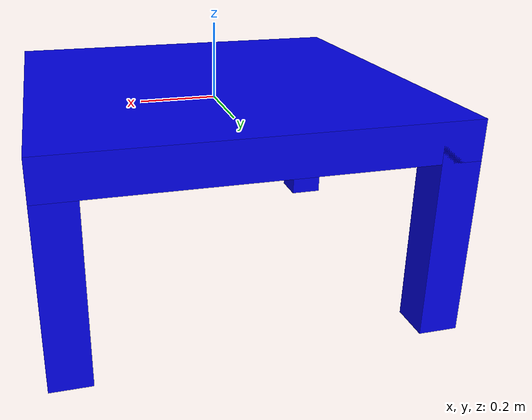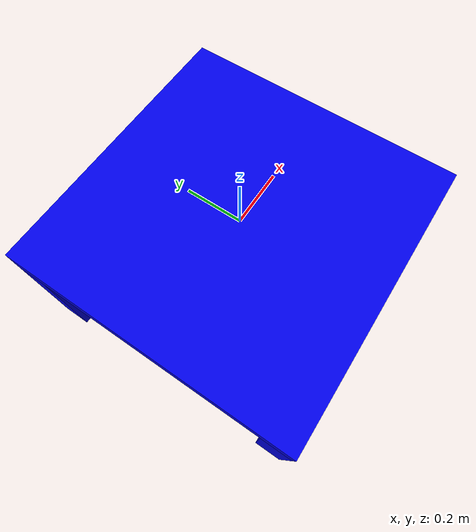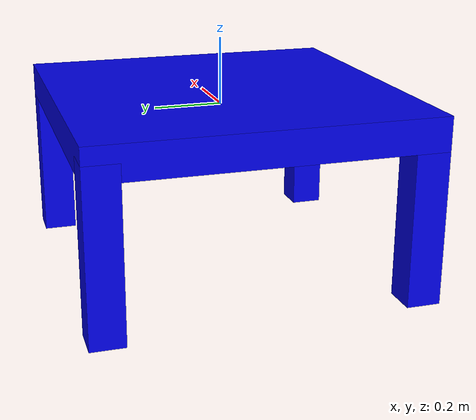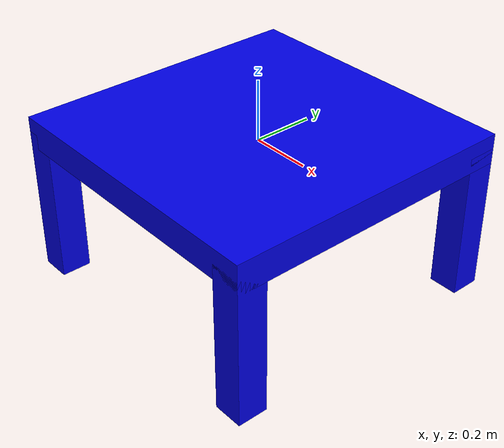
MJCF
<mujoco model="table">
    <worldbody>
        <body name="table">
            <freejoint />
            <geom type="box" size=".5 .5 .05" rgba="0 0 .9 1" mass="6" />
            <geom type="box" pos=".45 .45 -.25" size=".05 .05 .25" rgba="0 0 .9 1" mass="1" />
            <geom type="box" pos=".45 -.45 -.25" size=".05 .05 .25" rgba="0 0 .9 1" mass="1" />
            <geom type="box" pos="-.45 .45 -.25" size=".05 .05 .25" rgba="0 0 .9 1" mass="1" />
            <geom type="box" pos="-.45 -.45 -.25" size=".05 .05 .25" rgba="0 0 .9 1" mass="1" />
        </body>
    </worldbody>
</mujoco>
